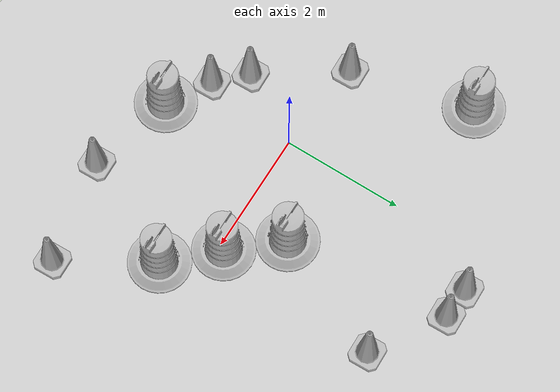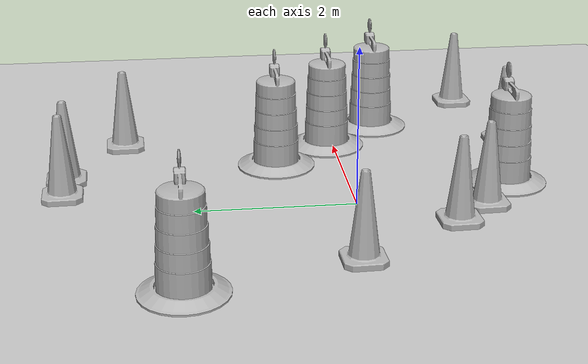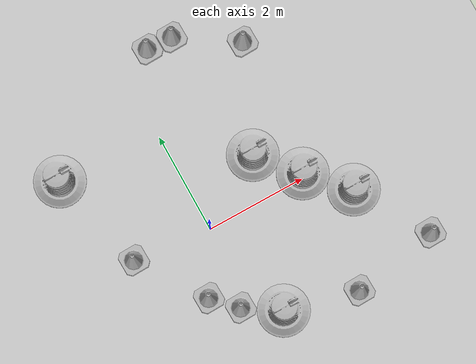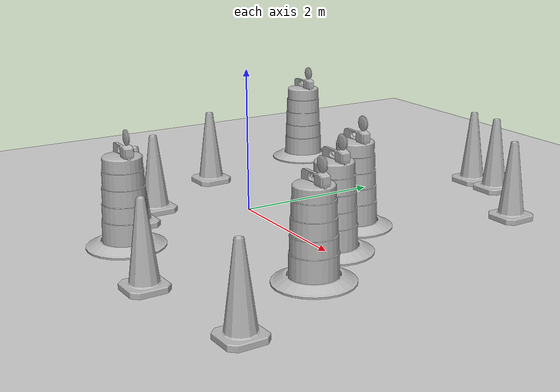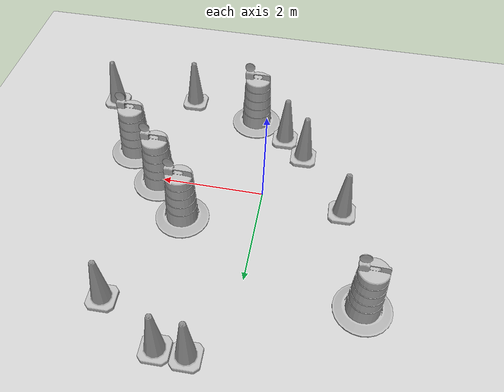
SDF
<sdf version="1.7">
 <world name="default">
  <light name="sun" type="directional">
   <pose>0 0 10 0 -0 0</pose>
   <diffuse>0.8 0.8 0.8 1</diffuse>
   <specular>0.2 0.2 0.2 1</specular>
   <attenuation>
    <range>1000</range>
    <constant>0.9</constant>
    <linear>0.01</linear>
    <quadratic>0.001</quadratic>
   </attenuation>
   <direction>-0.5 0.1 -0.9</direction>
   <spot><inner_angle>0</inner_angle><outer_angle>0</outer_angle><falloff>0</falloff></spot>
  </light>
  <model name="ground_plane">
   <static>1</static>
   <link name="link">
    <collision name="collision">
     <geometry><plane><normal>0 0 1</normal><size>100 100</size></plane></geometry>
     <surface><friction><ode><mu>100</mu><mu2>50</mu2></ode></friction></surface>
    </collision>
    <visual name="visual">
     <cast_shadows>0</cast_shadows>
     <geometry><plane><normal>0 0 1</normal><size>100 100</size></plane></geometry>
     <material>
      <script><uri>file://media/materials/scripts/gazebo.material</uri><name>Gazebo/Grey</name></script>
     </material>
    </visual>
   </link>
  </model>
  <gravity>0 0 -9.8</gravity>
  <magnetic_field>6e-06 2.3e-05 -4.2e-05</magnetic_field>
  <atmosphere type="adiabatic"/>
  <physics type="ode">
   <max_step_size>0.001</max_step_size>
   <real_time_factor>1</real_time_factor>
   <real_time_update_rate>1000</real_time_update_rate>
  </physics>
  <scene><ambient>0.4 0.4 0.4 1</ambient><background>0.7 0.7 0.7 1</background><shadows>1</shadows></scene>
  <audio><device>default</device></audio>
  <spherical_coordinates>
   <surface_model>EARTH_WGS84</surface_model>
   <latitude_deg>0</latitude_deg>
   <longitude_deg>0</longitude_deg>
   <elevation>0</elevation>
   <heading_deg>0</heading_deg>
  </spherical_coordinates>
  <model name="Construction Barrel">
   <link name="link">
    <inertial>
     <pose>0 0 0.4 0 -0 0</pose>
     <mass>500</mass>
     <inertia><ixx>51.2096</ixx><iyy>51.2096</iyy><izz>25</izz><ixy>0</ixy><ixz>0</ixz><iyz>0</iyz></inertia>
    </inertial>
    <collision name="collision">
     <geometry><mesh><uri>model://construction_barrel/meshes/construction_barrel.dae</uri></mesh></geometry>
    </collision>
    <visual name="visual">
     <geometry><mesh><uri>model://construction_barrel/meshes/construction_barrel.dae</uri></mesh></geometry>
    </visual>
   </link>
   <pose>1.39226 0.850958 -0 0 0 -0.004204</pose>
  </model>
  <model name="Construction Barrel_clone">
   <link name="link">
    <inertial>
     <pose>0 0 0.4 0 -0 0</pose>
     <mass>500</mass>
     <inertia><ixx>51.2096</ixx><iyy>51.2096</iyy><izz>25</izz><ixy>0</ixy><ixz>0</ixz><iyz>0</iyz></inertia>
    </inertial>
    <collision name="collision">
     <geometry><mesh><uri>model://construction_barrel/meshes/construction_barrel.dae</uri></mesh></geometry>
    </collision>
    <visual name="visual">
     <geometry><mesh><uri>model://construction_barrel/meshes/construction_barrel.dae</uri></mesh></geometry>
    </visual>
   </link>
   <pose>2.05316 0.083193 1e-06 3e-06 2e-06 -0.001046</pose>
  </model>
  <model name="Construction Barrel_clone_0">
   <link name="link">
    <inertial>
     <pose>0 0 0.4 0 -0 0</pose>
     <mass>500</mass>
     <inertia><ixx>51.2096</ixx><iyy>51.2096</iyy><izz>25</izz><ixy>0</ixy><ixz>0</ixz><iyz>0</iyz></inertia>
    </inertial>
    <collision name="collision">
     <geometry><mesh><uri>model://construction_barrel/meshes/construction_barrel.dae</uri></mesh></geometry>
    </collision>
    <visual name="visual">
     <geometry><mesh><uri>model://construction_barrel/meshes/construction_barrel.dae</uri></mesh></geometry>
    </visual>
   </link>
   <pose>2.75248 -0.655311 -3e-06 -6e-06 -5e-06 -0.001964</pose>
  </model>
  <model name="Construction Cone">
   <link name="link">
    <collision name="collision">
     <geometry>
      <mesh><scale>10 10 10</scale><uri>model://construction_cone/meshes/construction_cone.dae</uri></mesh>
     </geometry>
    </collision>
    <visual name="visual">
     <geometry>
      <mesh><scale>10 10 10</scale><uri>model://construction_cone/meshes/construction_cone.dae</uri></mesh>
     </geometry>
    </visual>
    <inertial>
     <inertia><ixx>1</ixx><ixy>0</ixy><ixz>0</ixz><iyy>1</iyy><iyz>0</iyz><izz>1</izz></inertia>
     <mass>1</mass>
    </inertial>
   </link>
   <pose>-0.213419 -1.58436 -0 0 -1e-06 0.027511</pose>
  </model>
  <model name="Construction Barrel_clone_1">
   <link name="link">
    <inertial>
     <pose>0 0 0.4 0 -0 0</pose>
     <mass>500</mass>
     <inertia><ixx>51.2096</ixx><iyy>51.2096</iyy><izz>25</izz><ixy>0</ixy><ixz>0</ixz><iyz>0</iyz></inertia>
    </inertial>
    <collision name="collision">
     <geometry><mesh><uri>model://construction_barrel/meshes/construction_barrel.dae</uri></mesh></geometry>
    </collision>
    <visual name="visual">
     <geometry><mesh><uri>model://construction_barrel/meshes/construction_barrel.dae</uri></mesh></geometry>
    </visual>
   </link>
   <pose>0.470577 -2.02234 -0 1e-06 -1e-06 -0.004404</pose>
  </model>
  <model name="Construction Barrel_clone_2">
   <link name="link">
    <inertial>
     <pose>0 0 0.4 0 -0 0</pose>
     <mass>500</mass>
     <inertia><ixx>51.2096</ixx><iyy>51.2096</iyy><izz>25</izz><ixy>0</ixy><ixz>0</ixz><iyz>0</iyz></inertia>
    </inertial>
    <collision name="collision">
     <geometry><mesh><uri>model://construction_barrel/meshes/construction_barrel.dae</uri></mesh></geometry>
    </collision>
    <visual name="visual">
     <geometry><mesh><uri>model://construction_barrel/meshes/construction_barrel.dae</uri></mesh></geometry>
    </visual>
   </link>
   <pose>-2.06089 2.18165 -3e-06 -6e-06 -5e-06 -0.004202</pose>
  </model>
  <model name="Construction Cone_clone">
   <link name="link">
    <collision name="collision">
     <geometry>
      <mesh><scale>10 10 10</scale><uri>model://construction_cone/meshes/construction_cone.dae</uri></mesh>
     </geometry>
    </collision>
    <visual name="visual">
     <geometry>
      <mesh><scale>10 10 10</scale><uri>model://construction_cone/meshes/construction_cone.dae</uri></mesh>
     </geometry>
    </visual>
    <inertial>
     <inertia><ixx>1</ixx><ixy>0</ixy><ixz>0</ixz><iyy>1</iyy><iyz>0</iyz><izz>1</izz></inertia>
     <mass>1</mass>
    </inertial>
   </link>
   <pose>-0.654373 -1.13249 -3e-06 3e-06 1e-06 0.027511</pose>
  </model>
  <model name="Construction Cone_clone_0">
   <link name="link">
    <collision name="collision">
     <geometry>
      <mesh><scale>10 10 10</scale><uri>model://construction_cone/meshes/construction_cone.dae</uri></mesh>
     </geometry>
    </collision>
    <visual name="visual">
     <geometry>
      <mesh><scale>10 10 10</scale><uri>model://construction_cone/meshes/construction_cone.dae</uri></mesh>
     </geometry>
    </visual>
    <inertial>
     <inertia><ixx>1</ixx><ixy>0</ixy><ixz>0</ixz><iyy>1</iyy><iyz>0</iyz><izz>1</izz></inertia>
     <mass>1</mass>
    </inertial>
   </link>
   <pose>-1.54987 0.181878 -0 0 -0 0.027511</pose>
  </model>
  <model name="Construction Cone_clone_1">
   <link name="link">
    <collision name="collision">
     <geometry>
      <mesh><scale>10 10 10</scale><uri>model://construction_cone/meshes/construction_cone.dae</uri></mesh>
     </geometry>
    </collision>
    <visual name="visual">
     <geometry>
      <mesh><scale>10 10 10</scale><uri>model://construction_cone/meshes/construction_cone.dae</uri></mesh>
     </geometry>
    </visual>
    <inertial>
     <inertia><ixx>1</ixx><ixy>0</ixy><ixz>0</ixz><iyy>1</iyy><iyz>0</iyz><izz>1</izz></inertia>
     <mass>1</mass>
    </inertial>
   </link>
   <pose>0.616603 3.60321 -0 0 -1e-06 0.027511</pose>
  </model>
  <model name="Construction Cone_clone_2">
   <link name="link">
    <collision name="collision">
     <geometry>
      <mesh><scale>10 10 10</scale><uri>model://construction_cone/meshes/construction_cone.dae</uri></mesh>
     </geometry>
    </collision>
    <visual name="visual">
     <geometry>
      <mesh><scale>10 10 10</scale><uri>model://construction_cone/meshes/construction_cone.dae</uri></mesh>
     </geometry>
    </visual>
    <inertial>
     <inertia><ixx>1</ixx><ixy>0</ixy><ixz>0</ixz><iyy>1</iyy><iyz>0</iyz><izz>1</izz></inertia>
     <mass>1</mass>
    </inertial>
   </link>
   <pose>1.91045 -2.38425 -1e-05 -1e-06 -0 0.027511</pose>
  </model>
  <model name="Construction Cone_clone_3">
   <link name="link">
    <collision name="collision">
     <geometry>
      <mesh><scale>10 10 10</scale><uri>model://construction_cone/meshes/construction_cone.dae</uri></mesh>
     </geometry>
    </collision>
    <visual name="visual">
     <geometry>
      <mesh><scale>10 10 10</scale><uri>model://construction_cone/meshes/construction_cone.dae</uri></mesh>
     </geometry>
    </visual>
    <inertial>
     <inertia><ixx>1</ixx><ixy>0</ixy><ixz>0</ixz><iyy>1</iyy><iyz>0</iyz><izz>1</izz></inertia>
     <mass>1</mass>
    </inertial>
   </link>
   <pose>3.62469 -2.07532 -0 0 -0 0.027511</pose>
  </model>
  <model name="Construction Cone_clone_4">
   <link name="link">
    <collision name="collision">
     <geometry>
      <mesh><scale>10 10 10</scale><uri>model://construction_cone/meshes/construction_cone.dae</uri></mesh>
     </geometry>
    </collision>
    <visual name="visual">
     <geometry>
      <mesh><scale>10 10 10</scale><uri>model://construction_cone/meshes/construction_cone.dae</uri></mesh>
     </geometry>
    </visual>
    <inertial>
     <inertia><ixx>1</ixx><ixy>0</ixy><ixz>0</ixz><iyy>1</iyy><iyz>0</iyz><izz>1</izz></inertia>
     <mass>1</mass>
    </inertial>
   </link>
   <pose>1.13631 3.58153 -0 0 -0 0.027511</pose>
  </model>
  <model name="Construction Cone_clone_5">
   <link name="link">
    <collision name="collision">
     <geometry>
      <mesh><scale>10 10 10</scale><uri>model://construction_cone/meshes/construction_cone.dae</uri></mesh>
     </geometry>
    </collision>
    <visual name="visual">
     <geometry>
      <mesh><scale>10 10 10</scale><uri>model://construction_cone/meshes/construction_cone.dae</uri></mesh>
     </geometry>
    </visual>
    <inertial>
     <inertia><ixx>1</ixx><ixy>0</ixy><ixz>0</ixz><iyy>1</iyy><iyz>0</iyz><izz>1</izz></inertia>
     <mass>1</mass>
    </inertial>
   </link>
   <pose>2.28119 2.84928 -0 0 -1e-06 0.027511</pose>
  </model>
 </world>
</sdf>
